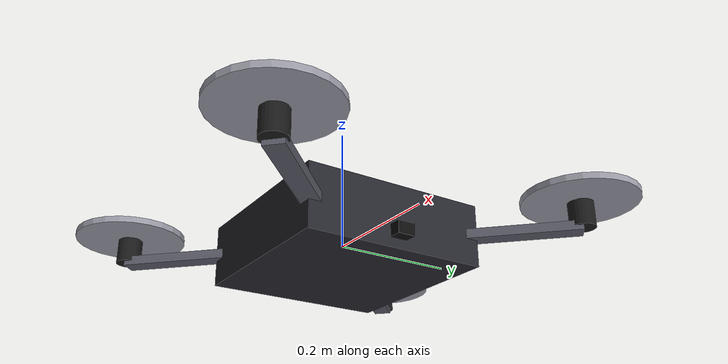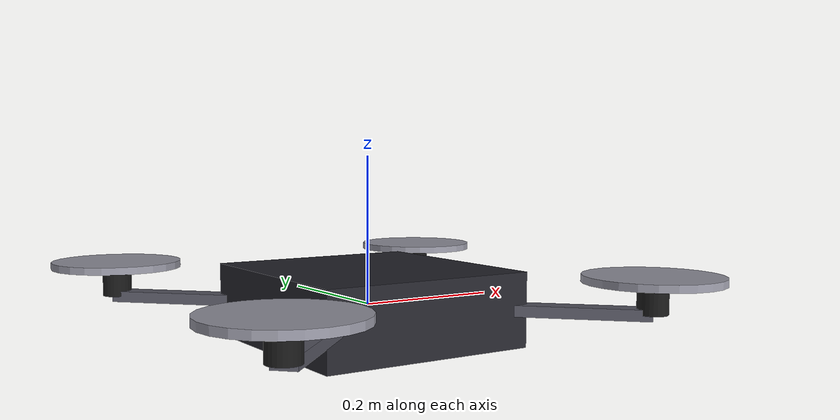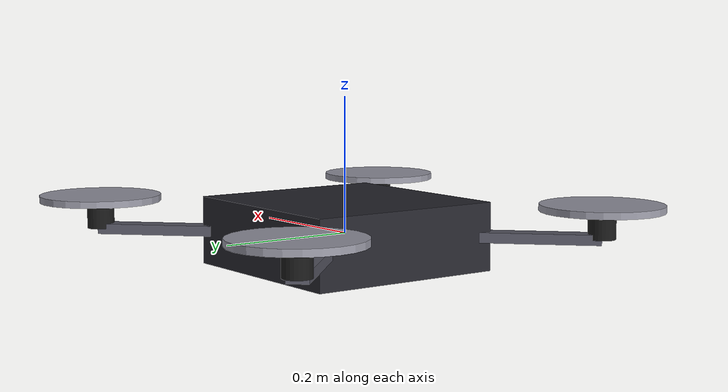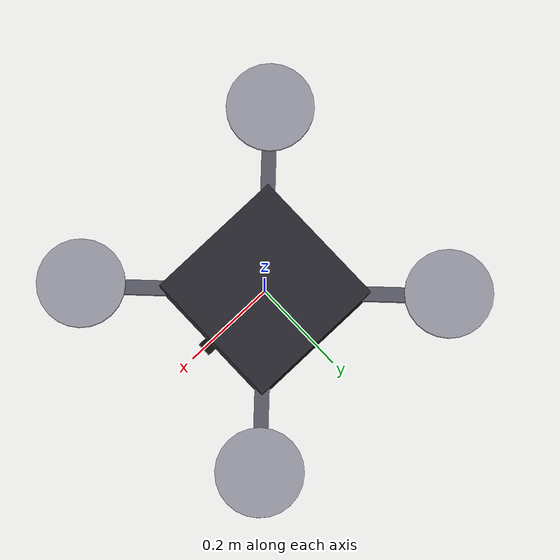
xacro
<?xml version="1.0"?>
<robot name="swarm_drone" xmlns:xacro="http://www.ros.org/wiki/xacro">

  <xacro:arg name="prefix" default=""/>
  <xacro:property name="prefix" value="$(arg prefix)"/>

  <xacro:include filename="$(find swarm_drone)/urdf/bot.xacro"/>
  <xacro:include filename="$(find swarm_drone)/urdf/camera.xacro"/>
  <xacro:include filename="$(find swarm_drone)/urdf/control.xacro"/>

</robot>

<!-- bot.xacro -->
<!--
  Physical quadrotor body: central box, four arms in an X configuration,
  a motor housing and a (non-rotating) propeller disc at each arm tip.
  Primitive geometry only (box/cylinder) - no meshes.
-->
<robot xmlns:xacro="http://www.ros.org/wiki/xacro">

  <xacro:property name="body_length" value="0.30"/>
  <xacro:property name="body_width" value="0.30"/>
  <xacro:property name="body_height" value="0.10"/>
  <xacro:property name="body_mass" value="1.2"/>

  <xacro:property name="arm_length" value="0.22"/>
  <xacro:property name="arm_width" value="0.03"/>
  <xacro:property name="arm_height" value="0.015"/>
  <xacro:property name="arm_mass" value="0.05"/>

  <xacro:property name="motor_radius" value="0.02"/>
  <xacro:property name="motor_height" value="0.04"/>
  <xacro:property name="motor_mass" value="0.03"/>

  <xacro:property name="prop_radius" value="0.09"/>
  <xacro:property name="prop_height" value="0.01"/>
  <xacro:property name="prop_mass" value="0.01"/>

  <material name="drone_body_color">
    <color rgba="0.15 0.15 0.18 1.0"/>
  </material>
  <material name="drone_arm_color">
    <color rgba="0.35 0.35 0.4 1.0"/>
  </material>
  <material name="drone_motor_color">
    <color rgba="0.1 0.1 0.1 1.0"/>
  </material>
  <material name="drone_prop_color">
    <color rgba="0.6 0.6 0.65 0.9"/>
  </material>

  <xacro:macro name="box_inertial" params="mass x y z">
    <inertial>
      <mass value="${mass}"/>
      <inertia
        ixx="${mass*(y*y+z*z)/12.0}" ixy="0.0" ixz="0.0"
        iyy="${mass*(x*x+z*z)/12.0}" iyz="0.0"
        izz="${mass*(x*x+y*y)/12.0}"/>
    </inertial>
  </xacro:macro>

  <xacro:macro name="cylinder_inertial" params="mass r l">
    <inertial>
      <mass value="${mass}"/>
      <inertia
        ixx="${mass*(3*r*r+l*l)/12.0}" ixy="0.0" ixz="0.0"
        iyy="${mass*(3*r*r+l*l)/12.0}" iyz="0.0"
        izz="${mass*r*r/2.0}"/>
    </inertial>
  </xacro:macro>

  <!-- Central body: also the root / base_link -->
  <link name="${prefix}base_link">
    <visual>
      <geometry>
        <box size="${body_length} ${body_width} ${body_height}"/>
      </geometry>
      <material name="drone_body_color"/>
    </visual>
    <collision>
      <geometry>
        <box size="${body_length} ${body_width} ${body_height}"/>
      </geometry>
    </collision>
    <xacro:box_inertial mass="${body_mass}" x="${body_length}" y="${body_width}" z="${body_height}"/>
  </link>

  <!-- One arm + motor + propeller assembly, placed radially at angle_deg around base_link -->
  <xacro:macro name="rotor_assembly" params="index angle_deg">
    <xacro:property name="a" value="${angle_deg*pi/180.0}"/>
    <xacro:property name="hub_radius" value="${body_length/2.0}"/>
    <xacro:property name="arm_x" value="${(hub_radius + arm_length/2.0)*cos(a)}"/>
    <xacro:property name="arm_y" value="${(hub_radius + arm_length/2.0)*sin(a)}"/>
    <xacro:property name="tip_x" value="${(hub_radius + arm_length)*cos(a)}"/>
    <xacro:property name="tip_y" value="${(hub_radius + arm_length)*sin(a)}"/>

    <link name="${prefix}arm_${index}_link">
      <visual>
        <geometry>
          <box size="${arm_length} ${arm_width} ${arm_height}"/>
        </geometry>
        <material name="drone_arm_color"/>
      </visual>
      <collision>
        <geometry>
          <box size="${arm_length} ${arm_width} ${arm_height}"/>
        </geometry>
      </collision>
      <xacro:box_inertial mass="${arm_mass}" x="${arm_length}" y="${arm_width}" z="${arm_height}"/>
    </link>

    <joint name="${prefix}arm_${index}_joint" type="fixed">
      <parent link="${prefix}base_link"/>
      <child link="${prefix}arm_${index}_link"/>
      <origin xyz="${arm_x} ${arm_y} 0.0" rpy="0 0 ${a}"/>
    </joint>

    <link name="${prefix}motor_${index}_link">
      <visual>
        <geometry>
          <cylinder radius="${motor_radius}" length="${motor_height}"/>
        </geometry>
        <material name="drone_motor_color"/>
      </visual>
      <collision>
        <geometry>
          <cylinder radius="${motor_radius}" length="${motor_height}"/>
        </geometry>
      </collision>
      <xacro:cylinder_inertial mass="${motor_mass}" r="${motor_radius}" l="${motor_height}"/>
    </link>

    <joint name="${prefix}motor_${index}_joint" type="fixed">
      <parent link="${prefix}base_link"/>
      <child link="${prefix}motor_${index}_link"/>
      <origin xyz="${tip_x} ${tip_y} ${motor_height/2.0}" rpy="0 0 0"/>
    </joint>

    <!-- Static (non-rotating) propeller disc representation -->
    <link name="${prefix}prop_${index}_link">
      <visual>
        <geometry>
          <cylinder radius="${prop_radius}" length="${prop_height}"/>
        </geometry>
        <material name="drone_prop_color"/>
      </visual>
      <collision>
        <geometry>
          <cylinder radius="${prop_radius}" length="${prop_height}"/>
        </geometry>
      </collision>
      <xacro:cylinder_inertial mass="${prop_mass}" r="${prop_radius}" l="${prop_height}"/>
    </link>

    <joint name="${prefix}prop_${index}_joint" type="fixed">
      <parent link="${prefix}motor_${index}_link"/>
      <child link="${prefix}prop_${index}_link"/>
      <origin xyz="0 0 ${motor_height/2.0 + prop_height/2.0}" rpy="0 0 0"/>
    </joint>
  </xacro:macro>

  <!-- Quad-X layout: four rotor assemblies at 45/135/225/315 degrees -->
  <xacro:rotor_assembly index="0" angle_deg="45"/>
  <xacro:rotor_assembly index="1" angle_deg="135"/>
  <xacro:rotor_assembly index="2" angle_deg="225"/>
  <xacro:rotor_assembly index="3" angle_deg="315"/>

</robot>

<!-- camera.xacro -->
<!--
  Single front-mounted RGB camera. No LiDAR/depth sensors.
-->
<robot xmlns:xacro="http://www.ros.org/wiki/xacro">

  <xacro:property name="camera_size" value="0.02"/>
  <xacro:property name="camera_mass" value="0.01"/>

  <material name="drone_camera_color">
    <color rgba="0.05 0.05 0.05 1.0"/>
  </material>

  <link name="${prefix}camera_link">
    <visual>
      <geometry>
        <box size="${camera_size} ${camera_size*1.4} ${camera_size}"/>
      </geometry>
      <material name="drone_camera_color"/>
    </visual>
    <collision>
      <geometry>
        <box size="${camera_size} ${camera_size*1.4} ${camera_size}"/>
      </geometry>
    </collision>
    <xacro:box_inertial mass="${camera_mass}" x="${camera_size}" y="${camera_size*1.4}" z="${camera_size}"/>
  </link>

  <joint name="${prefix}camera_joint" type="fixed">
    <parent link="${prefix}base_link"/>
    <child link="${prefix}camera_link"/>
    <origin xyz="${body_length/2.0 + camera_size/2.0} 0 ${-body_height/4.0}" rpy="0 0 0"/>
  </joint>

  <link name="${prefix}camera_optical_link"/>

  <joint name="${prefix}camera_optical_joint" type="fixed">
    <parent link="${prefix}camera_link"/>
    <child link="${prefix}camera_optical_link"/>
    <!-- Rotate to standard optical-frame convention (x-right, y-down, z-forward) -->
    <origin xyz="0 0 0" rpy="${-pi/2.0} 0 ${-pi/2.0}"/>
  </joint>

  <gazebo reference="${prefix}camera_link">
    <sensor name="${prefix}rgb_camera" type="camera">
      <pose>0 0 0 0 0 0</pose>
      <camera>
        <horizontal_fov>1.047</horizontal_fov>
        <image>
          <width>640</width>
          <height>480</height>
          <format>R8G8B8</format>
        </image>
        <clip>
          <near>0.05</near>
          <far>100.0</far>
        </clip>
      </camera>
      <always_on>1</always_on>
      <update_rate>15</update_rate>
      <visualize>true</visualize>
      <topic>${prefix}camera/image_raw</topic>
    </sensor>
  </gazebo>

</robot>
